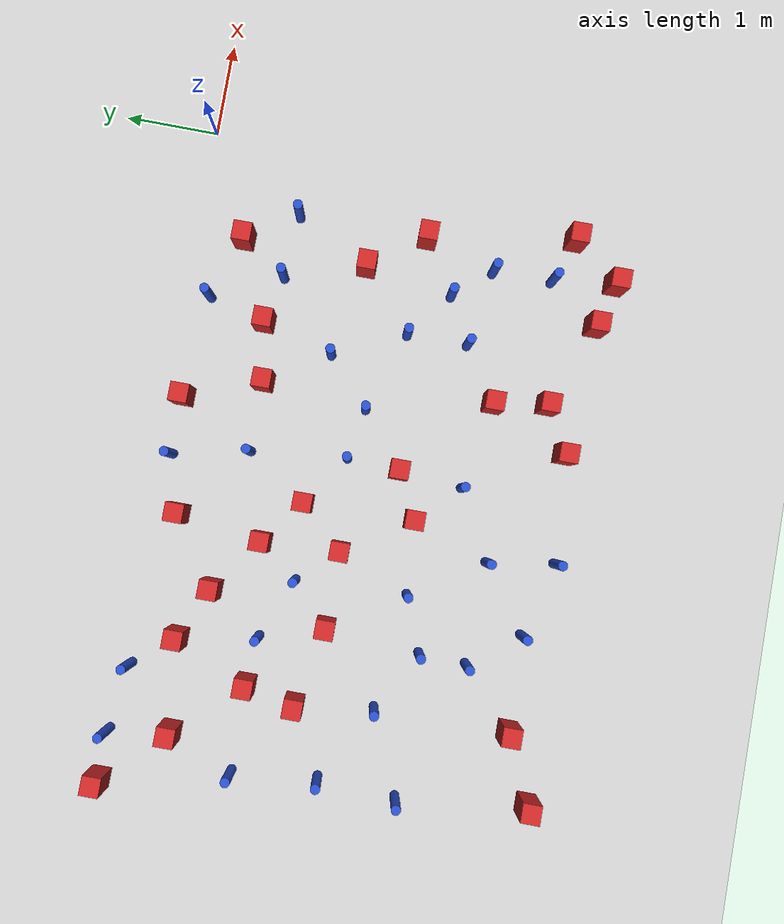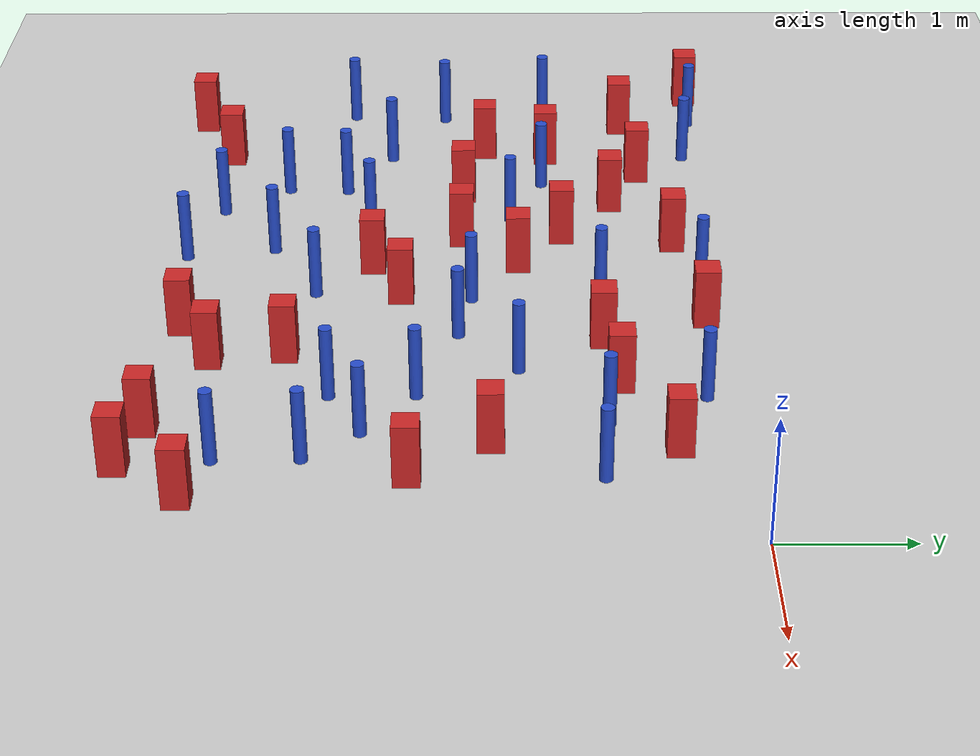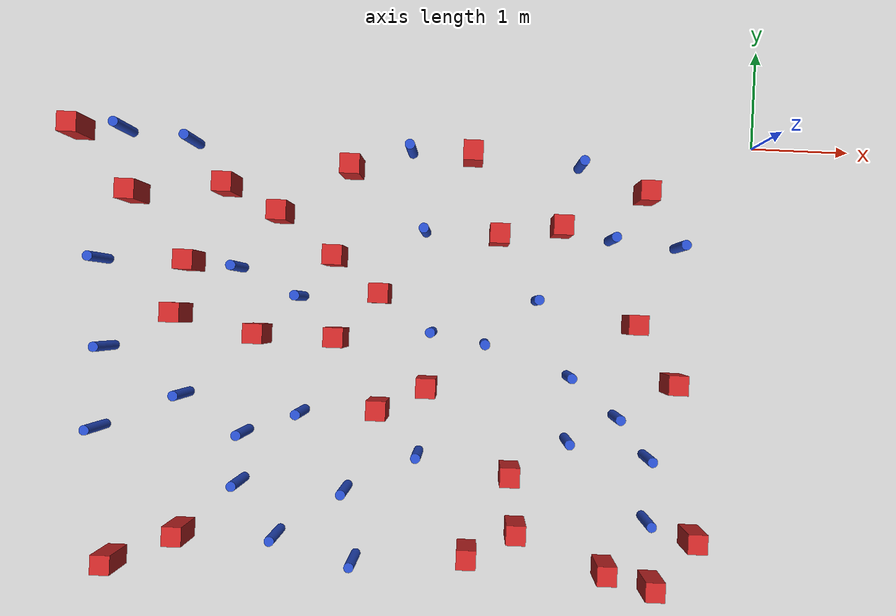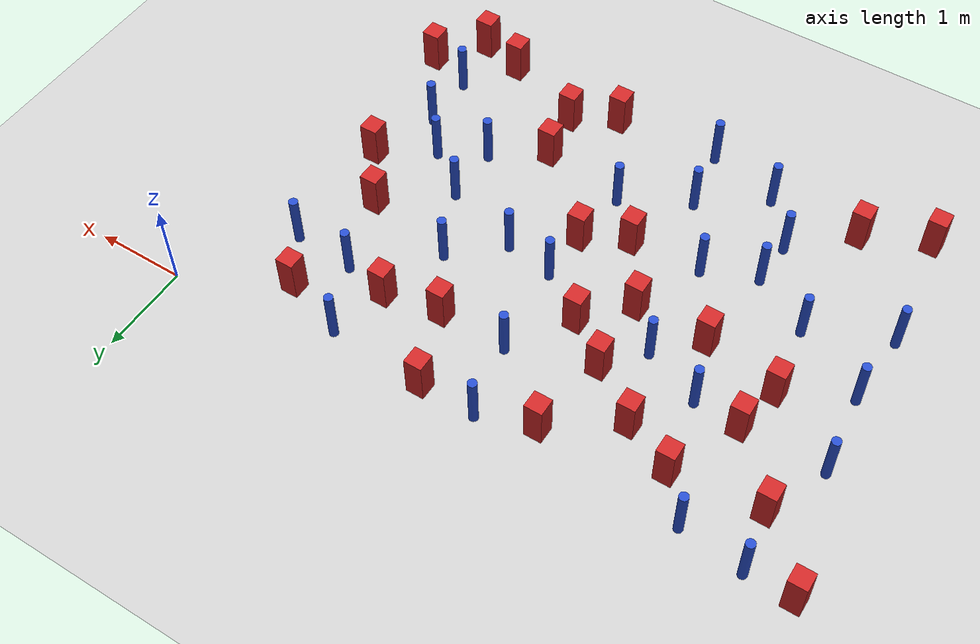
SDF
<sdf version="1.6">
 <world name="default">
  <model name="ground_plane">
   <static>1</static>
   <link name="link">
    <collision name="collision">
     <geometry><plane><normal>0 0 1</normal><size>100 100</size></plane></geometry>
     <surface><friction><ode><mu>100</mu><mu2>50</mu2></ode></friction></surface>
    </collision>
    <visual name="visual">
     <cast_shadows>0</cast_shadows>
     <geometry><plane><normal>0 0 1</normal><size>100 100</size></plane></geometry>
     <material>
      <ambient>1.0 1.0 1.0 1.0</ambient>
      <diffuse>0.8 0.8 0.8 1.0</diffuse>
      <specular>0.01 0.01 0.01 1.000000</specular>
     </material>
    </visual>
   </link>
  </model>
  <model name="pole_obstacle8">
   <static>true</static>
   <pose>-1.8065690611 -0.287226070218 7.38925637345e-09 -8.47170692798e-08 1.24976764989e-08 -1.74513093022e-07</pose>
   <link name="link">
    <pose>0 0 0.3 0 -0 0</pose>
    <inertial>
     <mass>1</mass>
     <inertia><ixx>0.145833</ixx><ixy>0</ixy><ixz>0</ixz><iyy>0.145833</iyy><iyz>0</iyz><izz>0.125</izz></inertia>
    </inertial>
    <collision name="collision">
     <geometry><cylinder><radius>0.05</radius><length>.6</length></cylinder></geometry>
    </collision>
    <visual name="visual">
     <geometry><cylinder><radius>0.05</radius><length>.6</length></cylinder></geometry>
     <material>
      <script><name>Gazebo/Blue</name><uri>file://media/materials/scripts/gazebo.material</uri></script>
     </material>
    </visual>
   </link>
  </model>
  <model name="square_post_obstacle5">
   <static>true</static>
   <pose>-5.03799725201 -2.14161699042 1.91545236811e-07 -7.35059704564e-06 1.12565212e-07 2.39332434364e-05</pose>
   <link name="link">
    <pose>0 0 0.25 0 -0 0</pose>
    <inertial>
     <mass>100</mass>
     <inertia>
      <ixx>0.166667</ixx>
      <ixy>0</ixy>
      <ixz>0</ixz>
      <iyy>0.166667</iyy>
      <iyz>0</iyz>
      <izz>0.166667</izz>
     </inertia>
    </inertial>
    <collision name="collision"><geometry><box><size>.2 .2 .5</size></box></geometry></collision>
    <visual name="visual">
     <geometry><box><size>.2 .2 .5</size></box></geometry>
     <material>
      <script><name>Gazebo/Red</name><uri>file://media/materials/scripts/gazebo.material</uri></script>
     </material>
    </visual>
   </link>
  </model>
  <model name="pole_obstacle10">
   <static>true</static>
   <pose>-5.77082774487 -2.78743568391 7.38925637345e-09 -8.47170692798e-08 1.24976764937e-08 -1.74513093023e-07</pose>
   <link name="link">
    <pose>0 0 0.3 0 -0 0</pose>
    <inertial>
     <mass>1</mass>
     <inertia><ixx>0.145833</ixx><ixy>0</ixy><ixz>0</ixz><iyy>0.145833</iyy><iyz>0</iyz><izz>0.125</izz></inertia>
    </inertial>
    <collision name="collision">
     <geometry><cylinder><radius>0.05</radius><length>.6</length></cylinder></geometry>
    </collision>
    <visual name="visual">
     <geometry><cylinder><radius>0.05</radius><length>.6</length></cylinder></geometry>
     <material>
      <script><name>Gazebo/Blue</name><uri>file://media/materials/scripts/gazebo.material</uri></script>
     </material>
    </visual>
   </link>
  </model>
  <model name="square_post_obstacle9">
   <static>true</static>
   <pose>-4.14083173612 -0.40034103166 1.91545236811e-07 -7.35059704564e-06 1.12565212e-07 2.39332434364e-05</pose>
   <link name="link">
    <pose>0 0 0.25 0 -0 0</pose>
    <inertial>
     <mass>100</mass>
     <inertia>
      <ixx>0.166667</ixx>
      <ixy>0</ixy>
      <ixz>0</ixz>
      <iyy>0.166667</iyy>
      <iyz>0</iyz>
      <izz>0.166667</izz>
     </inertia>
    </inertial>
    <collision name="collision"><geometry><box><size>.2 .2 .5</size></box></geometry></collision>
    <visual name="visual">
     <geometry><box><size>.2 .2 .5</size></box></geometry>
     <material>
      <script><name>Gazebo/Red</name><uri>file://media/materials/scripts/gazebo.material</uri></script>
     </material>
    </visual>
   </link>
  </model>
  <model name="pole_obstacle24">
   <static>true</static>
   <pose>-1.83386318585 -3.10008646162 7.38925637345e-09 -8.47170692799e-08 1.24976765053e-08 -1.74513093017e-07</pose>
   <link name="link">
    <pose>0 0 0.3 0 -0 0</pose>
    <inertial>
     <mass>1</mass>
     <inertia><ixx>0.145833</ixx><ixy>0</ixy><ixz>0</ixz><iyy>0.145833</iyy><iyz>0</iyz><izz>0.125</izz></inertia>
    </inertial>
    <collision name="collision">
     <geometry><cylinder><radius>0.05</radius><length>.6</length></cylinder></geometry>
    </collision>
    <visual name="visual">
     <geometry><cylinder><radius>0.05</radius><length>.6</length></cylinder></geometry>
     <material>
      <script><name>Gazebo/Blue</name><uri>file://media/materials/scripts/gazebo.material</uri></script>
     </material>
    </visual>
   </link>
  </model>
  <model name="square_post_obstacle28">
   <static>true</static>
   <pose>-1.18521659363 -1.88922483155 1.91545236811e-07 -7.35059704564e-06 1.12565212e-07 2.39332434364e-05</pose>
   <link name="link">
    <pose>0 0 0.25 0 -0 0</pose>
    <inertial>
     <mass>100</mass>
     <inertia>
      <ixx>0.166667</ixx>
      <ixy>0</ixy>
      <ixz>0</ixz>
      <iyy>0.166667</iyy>
      <iyz>0</iyz>
      <izz>0.166667</izz>
     </inertia>
    </inertial>
    <collision name="collision"><geometry><box><size>.2 .2 .5</size></box></geometry></collision>
    <visual name="visual">
     <geometry><box><size>.2 .2 .5</size></box></geometry>
     <material>
      <script><name>Gazebo/Red</name><uri>file://media/materials/scripts/gazebo.material</uri></script>
     </material>
    </visual>
   </link>
  </model>
  <model name="square_post_obstacle29">
   <static>true</static>
   <pose>-3.28707836626 -2.61381528833 1.91545236811e-07 -7.35059704564e-06 1.12565212e-07 2.39332434364e-05</pose>
   <link name="link">
    <pose>0 0 0.25 0 -0 0</pose>
    <inertial>
     <mass>100</mass>
     <inertia>
      <ixx>0.166667</ixx>
      <ixy>0</ixy>
      <ixz>0</ixz>
      <iyy>0.166667</iyy>
      <iyz>0</iyz>
      <izz>0.166667</izz>
     </inertia>
    </inertial>
    <collision name="collision"><geometry><box><size>.2 .2 .5</size></box></geometry></collision>
    <visual name="visual">
     <geometry><box><size>.2 .2 .5</size></box></geometry>
     <material>
      <script><name>Gazebo/Red</name><uri>file://media/materials/scripts/gazebo.material</uri></script>
     </material>
    </visual>
   </link>
  </model>
  <model name="pole_obstacle35">
   <static>true</static>
   <pose>-6.67413662354 -1.43992728645 7.38925637345e-09 -8.471706928e-08 1.24976765134e-08 -1.74513093015e-07</pose>
   <link name="link">
    <pose>0 0 0.3 0 -0 0</pose>
    <inertial>
     <mass>1</mass>
     <inertia><ixx>0.145833</ixx><ixy>0</ixy><ixz>0</ixz><iyy>0.145833</iyy><iyz>0</iyz><izz>0.125</izz></inertia>
    </inertial>
    <collision name="collision">
     <geometry><cylinder><radius>0.05</radius><length>.6</length></cylinder></geometry>
    </collision>
    <visual name="visual">
     <geometry><cylinder><radius>0.05</radius><length>.6</length></cylinder></geometry>
     <material>
      <script><name>Gazebo/Blue</name><uri>file://media/materials/scripts/gazebo.material</uri></script>
     </material>
    </visual>
   </link>
  </model>
  <model name="pole_obstacle38">
   <static>true</static>
   <pose>-0.99141755636 -3.87739033498 7.38925637345e-09 -8.47170692799e-08 1.24976765063e-08 -1.74513093018e-07</pose>
   <link name="link">
    <pose>0 0 0.3 0 -0 0</pose>
    <inertial>
     <mass>1</mass>
     <inertia><ixx>0.145833</ixx><ixy>0</ixy><ixz>0</ixz><iyy>0.145833</iyy><iyz>0</iyz><izz>0.125</izz></inertia>
    </inertial>
    <collision name="collision">
     <geometry><cylinder><radius>0.05</radius><length>.6</length></cylinder></geometry>
    </collision>
    <visual name="visual">
     <geometry><cylinder><radius>0.05</radius><length>.6</length></cylinder></geometry>
     <material>
      <script><name>Gazebo/Blue</name><uri>file://media/materials/scripts/gazebo.material</uri></script>
     </material>
    </visual>
   </link>
  </model>
  <model name="pole_obstacle43">
   <static>true</static>
   <pose>-3.25931645318 -2.05246729842 7.38925637345e-09 -8.47170692798e-08 1.24976764939e-08 -1.74513093025e-07</pose>
   <link name="link">
    <pose>0 0 0.3 0 -0 0</pose>
    <inertial>
     <mass>1</mass>
     <inertia><ixx>0.145833</ixx><ixy>0</ixy><ixz>0</ixz><iyy>0.145833</iyy><iyz>0</iyz><izz>0.125</izz></inertia>
    </inertial>
    <collision name="collision">
     <geometry><cylinder><radius>0.05</radius><length>.6</length></cylinder></geometry>
    </collision>
    <visual name="visual">
     <geometry><cylinder><radius>0.05</radius><length>.6</length></cylinder></geometry>
     <material>
      <script><name>Gazebo/Blue</name><uri>file://media/materials/scripts/gazebo.material</uri></script>
     </material>
    </visual>
   </link>
  </model>
  <model name="square_post_obstacle37">
   <static>true</static>
   <pose>-2.60812226487 -1.03034826785 1.91545236811e-07 -7.35059704564e-06 1.12565212e-07 2.39332434364e-05</pose>
   <link name="link">
    <pose>0 0 0.25 0 -0 0</pose>
    <inertial>
     <mass>100</mass>
     <inertia>
      <ixx>0.166667</ixx>
      <ixy>0</ixy>
      <ixz>0</ixz>
      <iyy>0.166667</iyy>
      <iyz>0</iyz>
      <izz>0.166667</izz>
     </inertia>
    </inertial>
    <collision name="collision"><geometry><box><size>.2 .2 .5</size></box></geometry></collision>
    <visual name="visual">
     <geometry><box><size>.2 .2 .5</size></box></geometry>
     <material>
      <script><name>Gazebo/Red</name><uri>file://media/materials/scripts/gazebo.material</uri></script>
     </material>
    </visual>
   </link>
  </model>
  <model name="square_post_obstacle41">
   <static>true</static>
   <pose>-1.97449627131 -0.919613141514 1.91545236811e-07 -7.35059704564e-06 1.12565212e-07 2.39332434364e-05</pose>
   <link name="link">
    <pose>0 0 0.25 0 -0 0</pose>
    <inertial>
     <mass>100</mass>
     <inertia>
      <ixx>0.166667</ixx>
      <ixy>0</ixy>
      <ixz>0</ixz>
      <iyy>0.166667</iyy>
      <iyz>0</iyz>
      <izz>0.166667</izz>
     </inertia>
    </inertial>
    <collision name="collision"><geometry><box><size>.2 .2 .5</size></box></geometry></collision>
    <visual name="visual">
     <geometry><box><size>.2 .2 .5</size></box></geometry>
     <material>
      <script><name>Gazebo/Red</name><uri>file://media/materials/scripts/gazebo.material</uri></script>
     </material>
    </visual>
   </link>
  </model>
  <model name="pole_obstacle56">
   <static>true</static>
   <pose>-5.13363076707 -3.15208082832 7.38925637345e-09 -8.47170692798e-08 1.24976764937e-08 -1.74513093023e-07</pose>
   <link name="link">
    <pose>0 0 0.3 0 -0 0</pose>
    <inertial>
     <mass>1</mass>
     <inertia><ixx>0.145833</ixx><ixy>0</ixy><ixz>0</ixz><iyy>0.145833</iyy><iyz>0</iyz><izz>0.125</izz></inertia>
    </inertial>
    <collision name="collision">
     <geometry><cylinder><radius>0.05</radius><length>.6</length></cylinder></geometry>
    </collision>
    <visual name="visual">
     <geometry><cylinder><radius>0.05</radius><length>.6</length></cylinder></geometry>
     <material>
      <script><name>Gazebo/Blue</name><uri>file://media/materials/scripts/gazebo.material</uri></script>
     </material>
    </visual>
   </link>
  </model>
  <model name="square_post_obstacle50">
   <static>true</static>
   <pose>-4.85392737041 -0.892788304461 1.91545236811e-07 -7.35059704564e-06 1.12565212e-07 2.39332434364e-05</pose>
   <link name="link">
    <pose>0 0 0.25 0 -0 0</pose>
    <inertial>
     <mass>100</mass>
     <inertia>
      <ixx>0.166667</ixx>
      <ixy>0</ixy>
      <ixz>0</ixz>
      <iyy>0.166667</iyy>
      <iyz>0</iyz>
      <izz>0.166667</izz>
     </inertia>
    </inertial>
    <collision name="collision"><geometry><box><size>.2 .2 .5</size></box></geometry></collision>
    <visual name="visual">
     <geometry><box><size>.2 .2 .5</size></box></geometry>
     <material>
      <script><name>Gazebo/Red</name><uri>file://media/materials/scripts/gazebo.material</uri></script>
     </material>
    </visual>
   </link>
  </model>
  <model name="pole_obstacle74">
   <static>true</static>
   <pose>-1.00678500519 -3.23723825303 7.38925637345e-09 -8.47170692799e-08 1.24976765076e-08 -1.74513093016e-07</pose>
   <link name="link">
    <pose>0 0 0.3 0 -0 0</pose>
    <inertial>
     <mass>1</mass>
     <inertia><ixx>0.145833</ixx><ixy>0</ixy><ixz>0</ixz><iyy>0.145833</iyy><iyz>0</iyz><izz>0.125</izz></inertia>
    </inertial>
    <collision name="collision">
     <geometry><cylinder><radius>0.05</radius><length>.6</length></cylinder></geometry>
    </collision>
    <visual name="visual">
     <geometry><cylinder><radius>0.05</radius><length>.6</length></cylinder></geometry>
     <material>
      <script><name>Gazebo/Blue</name><uri>file://media/materials/scripts/gazebo.material</uri></script>
     </material>
    </visual>
   </link>
  </model>
  <model name="square_post_obstacle64">
   <static>true</static>
   <pose>-2.4064492656 -3.46624034341 1.91545236811e-07 -7.35059704564e-06 1.12565212e-07 2.39332434364e-05</pose>
   <link name="link">
    <pose>0 0 0.25 0 -0 0</pose>
    <inertial>
     <mass>100</mass>
     <inertia>
      <ixx>0.166667</ixx>
      <ixy>0</ixy>
      <ixz>0</ixz>
      <iyy>0.166667</iyy>
      <iyz>0</iyz>
      <izz>0.166667</izz>
     </inertia>
    </inertial>
    <collision name="collision"><geometry><box><size>.2 .2 .5</size></box></geometry></collision>
    <visual name="visual">
     <geometry><box><size>.2 .2 .5</size></box></geometry>
     <material>
      <script><name>Gazebo/Red</name><uri>file://media/materials/scripts/gazebo.material</uri></script>
     </material>
    </visual>
   </link>
  </model>
  <model name="square_post_obstacle69">
   <static>true</static>
   <pose>-0.762250352055 -2.47635297729 1.91545236811e-07 -7.35059704564e-06 1.12565212e-07 2.39332434364e-05</pose>
   <link name="link">
    <pose>0 0 0.25 0 -0 0</pose>
    <inertial>
     <mass>100</mass>
     <inertia>
      <ixx>0.166667</ixx>
      <ixy>0</ixy>
      <ixz>0</ixz>
      <iyy>0.166667</iyy>
      <iyz>0</iyz>
      <izz>0.166667</izz>
     </inertia>
    </inertial>
    <collision name="collision"><geometry><box><size>.2 .2 .5</size></box></geometry></collision>
    <visual name="visual">
     <geometry><box><size>.2 .2 .5</size></box></geometry>
     <material>
      <script><name>Gazebo/Red</name><uri>file://media/materials/scripts/gazebo.material</uri></script>
     </material>
    </visual>
   </link>
  </model>
  <model name="pole_obstacle82">
   <static>true</static>
   <pose>-4.61562647308 -1.74129449645 7.38925637345e-09 -8.471706928e-08 1.24976765134e-08 -1.74513093015e-07</pose>
   <link name="link">
    <pose>0 0 0.3 0 -0 0</pose>
    <inertial>
     <mass>1</mass>
     <inertia><ixx>0.145833</ixx><ixy>0</ixy><ixz>0</ixz><iyy>0.145833</iyy><iyz>0</iyz><izz>0.125</izz></inertia>
    </inertial>
    <collision name="collision">
     <geometry><cylinder><radius>0.05</radius><length>.6</length></cylinder></geometry>
    </collision>
    <visual name="visual">
     <geometry><cylinder><radius>0.05</radius><length>.6</length></cylinder></geometry>
     <material>
      <script><name>Gazebo/Blue</name><uri>file://media/materials/scripts/gazebo.material</uri></script>
     </material>
    </visual>
   </link>
  </model>
  <model name="pole_obstacle84">
   <static>true</static>
   <pose>-3.962976458 -4.40478168327 7.38925637345e-09 -8.471706928e-08 1.24976765147e-08 -1.74513093014e-07</pose>
   <link name="link">
    <pose>0 0 0.3 0 -0 0</pose>
    <inertial>
     <mass>1</mass>
     <inertia><ixx>0.145833</ixx><ixy>0</ixy><ixz>0</ixz><iyy>0.145833</iyy><iyz>0</iyz><izz>0.125</izz></inertia>
    </inertial>
    <collision name="collision">
     <geometry><cylinder><radius>0.05</radius><length>.6</length></cylinder></geometry>
    </collision>
    <visual name="visual">
     <geometry><cylinder><radius>0.05</radius><length>.6</length></cylinder></geometry>
     <material>
      <script><name>Gazebo/Blue</name><uri>file://media/materials/scripts/gazebo.material</uri></script>
     </material>
    </visual>
   </link>
  </model>
  <model name="square_post_obstacle74">
   <static>true</static>
   <pose>-6.45733960068 -4.51499570986 1.91545236811e-07 -7.35059704564e-06 1.12565212e-07 2.39332434364e-05</pose>
   <link name="link">
    <pose>0 0 0.25 0 -0 0</pose>
    <inertial>
     <mass>100</mass>
     <inertia>
      <ixx>0.166667</ixx>
      <ixy>0</ixy>
      <ixz>0</ixz>
      <iyy>0.166667</iyy>
      <iyz>0</iyz>
      <izz>0.166667</izz>
     </inertia>
    </inertial>
    <collision name="collision"><geometry><box><size>.2 .2 .5</size></box></geometry></collision>
    <visual name="visual">
     <geometry><box><size>.2 .2 .5</size></box></geometry>
     <material>
      <script><name>Gazebo/Red</name><uri>file://media/materials/scripts/gazebo.material</uri></script>
     </material>
    </visual>
   </link>
  </model>
  <model name="square_post_obstacle78">
   <static>true</static>
   <pose>-1.12118746112 -0.53835635817 1.91545236811e-07 -7.35059704564e-06 1.12565212e-07 2.39332434364e-05</pose>
   <link name="link">
    <pose>0 0 0.25 0 -0 0</pose>
    <inertial>
     <mass>100</mass>
     <inertia>
      <ixx>0.166667</ixx>
      <ixy>0</ixy>
      <ixz>0</ixz>
      <iyy>0.166667</iyy>
      <iyz>0</iyz>
      <izz>0.166667</izz>
     </inertia>
    </inertial>
    <collision name="collision"><geometry><box><size>.2 .2 .5</size></box></geometry></collision>
    <visual name="visual">
     <geometry><box><size>.2 .2 .5</size></box></geometry>
     <material>
      <script><name>Gazebo/Red</name><uri>file://media/materials/scripts/gazebo.material</uri></script>
     </material>
    </visual>
   </link>
  </model>
  <model name="square_post_obstacle81">
   <static>true</static>
   <pose>-1.39502527432 -4.40852561555 1.91545236811e-07 -7.35059704564e-06 1.12565212e-07 2.39332434364e-05</pose>
   <link name="link">
    <pose>0 0 0.25 0 -0 0</pose>
    <inertial>
     <mass>100</mass>
     <inertia>
      <ixx>0.166667</ixx>
      <ixy>0</ixy>
      <ixz>0</ixz>
      <iyy>0.166667</iyy>
      <iyz>0</iyz>
      <izz>0.166667</izz>
     </inertia>
    </inertial>
    <collision name="collision"><geometry><box><size>.2 .2 .5</size></box></geometry></collision>
    <visual name="visual">
     <geometry><box><size>.2 .2 .5</size></box></geometry>
     <material>
      <script><name>Gazebo/Red</name><uri>file://media/materials/scripts/gazebo.material</uri></script>
     </material>
    </visual>
   </link>
  </model>
  <model name="pole_obstacle92">
   <static>true</static>
   <pose>-6.47702842089 -0.10415934289 7.38925637345e-09 -8.47170692799e-08 1.24976765039e-08 -1.74513093019e-07</pose>
   <link name="link">
    <pose>0 0 0.3 0 -0 0</pose>
    <inertial>
     <mass>1</mass>
     <inertia><ixx>0.145833</ixx><ixy>0</ixy><ixz>0</ixz><iyy>0.145833</iyy><iyz>0</iyz><izz>0.125</izz></inertia>
    </inertial>
    <collision name="collision">
     <geometry><cylinder><radius>0.05</radius><length>.6</length></cylinder></geometry>
    </collision>
    <visual name="visual">
     <geometry><cylinder><radius>0.05</radius><length>.6</length></cylinder></geometry>
     <material>
      <script><name>Gazebo/Blue</name><uri>file://media/materials/scripts/gazebo.material</uri></script>
     </material>
    </visual>
   </link>
  </model>
  <model name="pole_obstacle95">
   <static>true</static>
   <pose>-1.83907558656 -2.44635905735 7.38925637345e-09 -8.47170692799e-08 1.24976765053e-08 -1.74513093017e-07</pose>
   <link name="link">
    <pose>0 0 0.3 0 -0 0</pose>
    <inertial>
     <mass>1</mass>
     <inertia><ixx>0.145833</ixx><ixy>0</ixy><ixz>0</ixz><iyy>0.145833</iyy><iyz>0</iyz><izz>0.125</izz></inertia>
    </inertial>
    <collision name="collision">
     <geometry><cylinder><radius>0.05</radius><length>.6</length></cylinder></geometry>
    </collision>
    <visual name="visual">
     <geometry><cylinder><radius>0.05</radius><length>.6</length></cylinder></geometry>
     <material>
      <script><name>Gazebo/Blue</name><uri>file://media/materials/scripts/gazebo.material</uri></script>
     </material>
    </visual>
   </link>
  </model>
  <model name="pole_obstacle96">
   <static>true</static>
   <pose>-6.63237047079 -3.16357143787 7.38925637345e-09 -8.47170692798e-08 1.24976764937e-08 -1.74513093023e-07</pose>
   <link name="link">
    <pose>0 0 0.3 0 -0 0</pose>
    <inertial>
     <mass>1</mass>
     <inertia><ixx>0.145833</ixx><ixy>0</ixy><ixz>0</ixz><iyy>0.145833</iyy><iyz>0</iyz><izz>0.125</izz></inertia>
    </inertial>
    <collision name="collision">
     <geometry><cylinder><radius>0.05</radius><length>.6</length></cylinder></geometry>
    </collision>
    <visual name="visual">
     <geometry><cylinder><radius>0.05</radius><length>.6</length></cylinder></geometry>
     <material>
      <script><name>Gazebo/Blue</name><uri>file://media/materials/scripts/gazebo.material</uri></script>
     </material>
    </visual>
   </link>
  </model>
  <model name="square_post_obstacle90">
   <static>true</static>
   <pose>-4.27782032081 -1.31708150873 1.91545236811e-07 -7.35059704564e-06 1.12565212e-07 2.39332434364e-05</pose>
   <link name="link">
    <pose>0 0 0.25 0 -0 0</pose>
    <inertial>
     <mass>100</mass>
     <inertia>
      <ixx>0.166667</ixx>
      <ixy>0</ixy>
      <ixz>0</ixz>
      <iyy>0.166667</iyy>
      <iyz>0</iyz>
      <izz>0.166667</izz>
     </inertia>
    </inertial>
    <collision name="collision"><geometry><box><size>.2 .2 .5</size></box></geometry></collision>
    <visual name="visual">
     <geometry><box><size>.2 .2 .5</size></box></geometry>
     <material>
      <script><name>Gazebo/Red</name><uri>file://media/materials/scripts/gazebo.material</uri></script>
     </material>
    </visual>
   </link>
  </model>
  <model name="square_post_obstacle92">
   <static>true</static>
   <pose>-5.41153924925 -0.634707509888 1.91545236811e-07 -7.35059704564e-06 1.12565212e-07 2.39332434364e-05</pose>
   <link name="link">
    <pose>0 0 0.25 0 -0 0</pose>
    <inertial>
     <mass>100</mass>
     <inertia>
      <ixx>0.166667</ixx>
      <ixy>0</ixy>
      <ixz>0</ixz>
      <iyy>0.166667</iyy>
      <iyz>0</iyz>
      <izz>0.166667</izz>
     </inertia>
    </inertial>
    <collision name="collision"><geometry><box><size>.2 .2 .5</size></box></geometry></collision>
    <visual name="visual">
     <geometry><box><size>.2 .2 .5</size></box></geometry>
     <material>
      <script><name>Gazebo/Red</name><uri>file://media/materials/scripts/gazebo.material</uri></script>
     </material>
    </visual>
   </link>
  </model>
  <model name="pole_obstacle104">
   <static>true</static>
   <pose>-1.45852328149 -1.02864376425 7.38925637345e-09 -8.47170692799e-08 1.24976765073e-08 -1.74513093016e-07</pose>
   <link name="link">
    <pose>0 0 0.3 0 -0 0</pose>
    <inertial>
     <mass>1</mass>
     <inertia><ixx>0.145833</ixx><ixy>0</ixy><ixz>0</ixz><iyy>0.145833</iyy><iyz>0</iyz><izz>0.125</izz></inertia>
    </inertial>
    <collision name="collision">
     <geometry><cylinder><radius>0.05</radius><length>.6</length></cylinder></geometry>
    </collision>
    <visual name="visual">
     <geometry><cylinder><radius>0.05</radius><length>.6</length></cylinder></geometry>
     <material>
      <script><name>Gazebo/Blue</name><uri>file://media/materials/scripts/gazebo.material</uri></script>
     </material>
    </visual>
   </link>
  </model>
  <model name="pole_obstacle105">
   <static>true</static>
   <pose>-4.5561785687 -2.92118423219 7.38925637345e-09 -8.47170692798e-08 1.24976764937e-08 -1.74513093023e-07</pose>
   <link name="link">
    <pose>0 0 0.3 0 -0 0</pose>
    <inertial>
     <mass>1</mass>
     <inertia><ixx>0.145833</ixx><ixy>0</ixy><ixz>0</ixz><iyy>0.145833</iyy><iyz>0</iyz><izz>0.125</izz></inertia>
    </inertial>
    <collision name="collision">
     <geometry><cylinder><radius>0.05</radius><length>.6</length></cylinder></geometry>
    </collision>
    <visual name="visual">
     <geometry><cylinder><radius>0.05</radius><length>.6</length></cylinder></geometry>
     <material>
      <script><name>Gazebo/Blue</name><uri>file://media/materials/scripts/gazebo.material</uri></script>
     </material>
    </visual>
   </link>
  </model>
  <model name="pole_obstacle109">
   <static>true</static>
   <pose>-5.15867994955 -3.65568916474 7.38925637345e-09 -8.47170692798e-08 1.24976764937e-08 -1.74513093023e-07</pose>
   <link name="link">
    <pose>0 0 0.3 0 -0 0</pose>
    <inertial>
     <mass>1</mass>
     <inertia><ixx>0.145833</ixx><ixy>0</ixy><ixz>0</ixz><iyy>0.145833</iyy><iyz>0</iyz><izz>0.125</izz></inertia>
    </inertial>
    <collision name="collision">
     <geometry><cylinder><radius>0.05</radius><length>.6</length></cylinder></geometry>
    </collision>
    <visual name="visual">
     <geometry><cylinder><radius>0.05</radius><length>.6</length></cylinder></geometry>
     <material>
      <script><name>Gazebo/Blue</name><uri>file://media/materials/scripts/gazebo.material</uri></script>
     </material>
    </visual>
   </link>
  </model>
  <model name="square_post_obstacle106">
   <static>true</static>
   <pose>-5.76568444791 -1.42831961041 1.91545236811e-07 -7.35059704564e-06 1.12565212e-07 2.39332434364e-05</pose>
   <link name="link">
    <pose>0 0 0.25 0 -0 0</pose>
    <inertial>
     <mass>100</mass>
     <inertia>
      <ixx>0.166667</ixx>
      <ixy>0</ixy>
      <ixz>0</ixz>
      <iyy>0.166667</iyy>
      <iyz>0</iyz>
      <izz>0.166667</izz>
     </inertia>
    </inertial>
    <collision name="collision"><geometry><box><size>.2 .2 .5</size></box></geometry></collision>
    <visual name="visual">
     <geometry><box><size>.2 .2 .5</size></box></geometry>
     <material>
      <script><name>Gazebo/Red</name><uri>file://media/materials/scripts/gazebo.material</uri></script>
     </material>
    </visual>
   </link>
  </model>
  <model name="square_post_obstacle107">
   <static>true</static>
   <pose>-3.80019118314 -1.68075415388 1.91545236811e-07 -7.35059704564e-06 1.12565212e-07 2.39332434364e-05</pose>
   <link name="link">
    <pose>0 0 0.25 0 -0 0</pose>
    <inertial>
     <mass>100</mass>
     <inertia>
      <ixx>0.166667</ixx>
      <ixy>0</ixy>
      <ixz>0</ixz>
      <iyy>0.166667</iyy>
      <iyz>0</iyz>
      <izz>0.166667</izz>
     </inertia>
    </inertial>
    <collision name="collision"><geometry><box><size>.2 .2 .5</size></box></geometry></collision>
    <visual name="visual">
     <geometry><box><size>.2 .2 .5</size></box></geometry>
     <material>
      <script><name>Gazebo/Red</name><uri>file://media/materials/scripts/gazebo.material</uri></script>
     </material>
    </visual>
   </link>
  </model>
  <model name="pole_obstacle125">
   <static>true</static>
   <pose>-3.35148922392 -3.29945449822 7.38925637345e-09 -8.471706928e-08 1.24976765098e-08 -1.74513093016e-07</pose>
   <link name="link">
    <pose>0 0 0.3 0 -0 0</pose>
    <inertial>
     <mass>1</mass>
     <inertia><ixx>0.145833</ixx><ixy>0</ixy><ixz>0</ixz><iyy>0.145833</iyy><iyz>0</iyz><izz>0.125</izz></inertia>
    </inertial>
    <collision name="collision">
     <geometry><cylinder><radius>0.05</radius><length>.6</length></cylinder></geometry>
    </collision>
    <visual name="visual">
     <geometry><cylinder><radius>0.05</radius><length>.6</length></cylinder></geometry>
     <material>
      <script><name>Gazebo/Blue</name><uri>file://media/materials/scripts/gazebo.material</uri></script>
     </material>
    </visual>
   </link>
  </model>
  <model name="square_post_obstacle138">
   <static>true</static>
   <pose>-6.37833131344 -0.747786851019 1.91545236811e-07 -7.35059704564e-06 1.12565212e-07 2.39332434364e-05</pose>
   <link name="link">
    <pose>0 0 0.25 0 -0 0</pose>
    <inertial>
     <mass>100</mass>
     <inertia>
      <ixx>0.166667</ixx>
      <ixy>0</ixy>
      <ixz>0</ixz>
      <iyy>0.166667</iyy>
      <iyz>0</iyz>
      <izz>0.166667</izz>
     </inertia>
    </inertial>
    <collision name="collision"><geometry><box><size>.2 .2 .5</size></box></geometry></collision>
    <visual name="visual">
     <geometry><box><size>.2 .2 .5</size></box></geometry>
     <material>
      <script><name>Gazebo/Red</name><uri>file://media/materials/scripts/gazebo.material</uri></script>
     </material>
    </visual>
   </link>
  </model>
  <model name="pole_obstacle144">
   <static>true</static>
   <pose>-4.07674775673 -3.69162556367 7.38925637345e-09 -8.47170692798e-08 1.24976764937e-08 -1.74513093023e-07</pose>
   <link name="link">
    <pose>0 0 0.3 0 -0 0</pose>
    <inertial>
     <mass>1</mass>
     <inertia><ixx>0.145833</ixx><ixy>0</ixy><ixz>0</ixz><iyy>0.145833</iyy><iyz>0</iyz><izz>0.125</izz></inertia>
    </inertial>
    <collision name="collision">
     <geometry><cylinder><radius>0.05</radius><length>.6</length></cylinder></geometry>
    </collision>
    <visual name="visual">
     <geometry><cylinder><radius>0.05</radius><length>.6</length></cylinder></geometry>
     <material>
      <script><name>Gazebo/Blue</name><uri>file://media/materials/scripts/gazebo.material</uri></script>
     </material>
    </visual>
   </link>
  </model>
  <model name="pole_obstacle147">
   <static>true</static>
   <pose>-5.77314602357 -0.200855454574 7.38925637345e-09 -8.471706928e-08 1.24976765089e-08 -1.74513093017e-07</pose>
   <link name="link">
    <pose>0 0 0.3 0 -0 0</pose>
    <inertial>
     <mass>1</mass>
     <inertia><ixx>0.145833</ixx><ixy>0</ixy><ixz>0</ixz><iyy>0.145833</iyy><iyz>0</iyz><izz>0.125</izz></inertia>
    </inertial>
    <collision name="collision">
     <geometry><cylinder><radius>0.05</radius><length>.6</length></cylinder></geometry>
    </collision>
    <visual name="visual">
     <geometry><cylinder><radius>0.05</radius><length>.6</length></cylinder></geometry>
     <material>
      <script><name>Gazebo/Blue</name><uri>file://media/materials/scripts/gazebo.material</uri></script>
     </material>
    </visual>
   </link>
  </model>
  <model name="pole_obstacle165">
   <static>true</static>
   <pose>-2.19627147152 -1.68369793422 7.38925637345e-09 -8.471706928e-08 1.24976765152e-08 -1.74513093012e-07</pose>
   <link name="link">
    <pose>0 0 0.3 0 -0 0</pose>
    <inertial>
     <mass>1</mass>
     <inertia><ixx>0.145833</ixx><ixy>0</ixy><ixz>0</ixz><iyy>0.145833</iyy><iyz>0</iyz><izz>0.125</izz></inertia>
    </inertial>
    <collision name="collision">
     <geometry><cylinder><radius>0.05</radius><length>.6</length></cylinder></geometry>
    </collision>
    <visual name="visual">
     <geometry><cylinder><radius>0.05</radius><length>.6</length></cylinder></geometry>
     <material>
      <script><name>Gazebo/Blue</name><uri>file://media/materials/scripts/gazebo.material</uri></script>
     </material>
    </visual>
   </link>
  </model>
  <model name="square_post_obstacle159">
   <static>true</static>
   <pose>-3.77560281054 -2.8590791466 1.91545236811e-07 -7.35059704564e-06 1.12565212e-07 2.39332434364e-05</pose>
   <link name="link">
    <pose>0 0 0.25 0 -0 0</pose>
    <inertial>
     <mass>100</mass>
     <inertia>
      <ixx>0.166667</ixx>
      <ixy>0</ixy>
      <ixz>0</ixz>
      <iyy>0.166667</iyy>
      <iyz>0</iyz>
      <izz>0.166667</izz>
     </inertia>
    </inertial>
    <collision name="collision"><geometry><box><size>.2 .2 .5</size></box></geometry></collision>
    <visual name="visual">
     <geometry><box><size>.2 .2 .5</size></box></geometry>
     <material>
      <script><name>Gazebo/Red</name><uri>file://media/materials/scripts/gazebo.material</uri></script>
     </material>
    </visual>
   </link>
  </model>
  <model name="square_post_obstacle160">
   <static>true</static>
   <pose>-2.32127567819 -4.04070667502 1.91545236811e-07 -7.35059704564e-06 1.12565212e-07 2.39332434364e-05</pose>
   <link name="link">
    <pose>0 0 0.25 0 -0 0</pose>
    <inertial>
     <mass>100</mass>
     <inertia>
      <ixx>0.166667</ixx>
      <ixy>0</ixy>
      <ixz>0</ixz>
      <iyy>0.166667</iyy>
      <iyz>0</iyz>
      <izz>0.166667</izz>
     </inertia>
    </inertial>
    <collision name="collision"><geometry><box><size>.2 .2 .5</size></box></geometry></collision>
    <visual name="visual">
     <geometry><box><size>.2 .2 .5</size></box></geometry>
     <material>
      <script><name>Gazebo/Red</name><uri>file://media/materials/scripts/gazebo.material</uri></script>
     </material>
    </visual>
   </link>
  </model>
  <model name="square_post_obstacle162">
   <static>true</static>
   <pose>-6.98233144137 -0.10551960714 1.91545236811e-07 -7.35059704564e-06 1.12565212e-07 2.39332434364e-05</pose>
   <link name="link">
    <pose>0 0 0.25 0 -0 0</pose>
    <inertial>
     <mass>100</mass>
     <inertia>
      <ixx>0.166667</ixx>
      <ixy>0</ixy>
      <ixz>0</ixz>
      <iyy>0.166667</iyy>
      <iyz>0</iyz>
      <izz>0.166667</izz>
     </inertia>
    </inertial>
    <collision name="collision"><geometry><box><size>.2 .2 .5</size></box></geometry></collision>
    <visual name="visual">
     <geometry><box><size>.2 .2 .5</size></box></geometry>
     <material>
      <script><name>Gazebo/Red</name><uri>file://media/materials/scripts/gazebo.material</uri></script>
     </material>
    </visual>
   </link>
  </model>
  <model name="pole_obstacle166">
   <static>true</static>
   <pose>-5.25820514681 -1.47108397383 7.38925637345e-09 -8.471706928e-08 1.24976765134e-08 -1.74513093015e-07</pose>
   <link name="link">
    <pose>0 0 0.3 0 -0 0</pose>
    <inertial>
     <mass>1</mass>
     <inertia><ixx>0.145833</ixx><ixy>0</ixy><ixz>0</ixz><iyy>0.145833</iyy><iyz>0</iyz><izz>0.125</izz></inertia>
    </inertial>
    <collision name="collision">
     <geometry><cylinder><radius>0.05</radius><length>.6</length></cylinder></geometry>
    </collision>
    <visual name="visual">
     <geometry><cylinder><radius>0.05</radius><length>.6</length></cylinder></geometry>
     <material>
      <script><name>Gazebo/Blue</name><uri>file://media/materials/scripts/gazebo.material</uri></script>
     </material>
    </visual>
   </link>
  </model>
  <model name="pole_obstacle167">
   <static>true</static>
   <pose>-6.5767780418 -2.33626163094 7.38925637345e-09 -8.47170692798e-08 1.24976764937e-08 -1.74513093023e-07</pose>
   <link name="link">
    <pose>0 0 0.3 0 -0 0</pose>
    <inertial>
     <mass>1</mass>
     <inertia><ixx>0.145833</ixx><ixy>0</ixy><ixz>0</ixz><iyy>0.145833</iyy><iyz>0</iyz><izz>0.125</izz></inertia>
    </inertial>
    <collision name="collision">
     <geometry><cylinder><radius>0.05</radius><length>.6</length></cylinder></geometry>
    </collision>
    <visual name="visual">
     <geometry><cylinder><radius>0.05</radius><length>.6</length></cylinder></geometry>
     <material>
      <script><name>Gazebo/Blue</name><uri>file://media/materials/scripts/gazebo.material</uri></script>
     </material>
    </visual>
   </link>
  </model>
  <model name="pole_obstacle171">
   <static>true</static>
   <pose>-4.75935039743 -4.17893095997 7.38925637345e-09 -8.47170692796e-08 1.24976764786e-08 -1.74513093032e-07</pose>
   <link name="link">
    <pose>0 0 0.3 0 -0 0</pose>
    <inertial>
     <mass>1</mass>
     <inertia><ixx>0.145833</ixx><ixy>0</ixy><ixz>0</ixz><iyy>0.145833</iyy><iyz>0</iyz><izz>0.125</izz></inertia>
    </inertial>
    <collision name="collision">
     <geometry><cylinder><radius>0.05</radius><length>.6</length></cylinder></geometry>
    </collision>
    <visual name="visual">
     <geometry><cylinder><radius>0.05</radius><length>.6</length></cylinder></geometry>
     <material>
      <script><name>Gazebo/Blue</name><uri>file://media/materials/scripts/gazebo.material</uri></script>
     </material>
    </visual>
   </link>
  </model>
  <model name="square_post_obstacle182">
   <static>true</static>
   <pose>-0.905462333646 -4.54730431295 1.91545236811e-07 -7.35059704564e-06 1.12565212e-07 2.39332434364e-05</pose>
   <link name="link">
    <pose>0 0 0.25 0 -0 0</pose>
    <inertial>
     <mass>100</mass>
     <inertia>
      <ixx>0.166667</ixx>
      <ixy>0</ixy>
      <ixz>0</ixz>
      <iyy>0.166667</iyy>
      <iyz>0</iyz>
      <izz>0.166667</izz>
     </inertia>
    </inertial>
    <collision name="collision"><geometry><box><size>.2 .2 .5</size></box></geometry></collision>
    <visual name="visual">
     <geometry><box><size>.2 .2 .5</size></box></geometry>
     <material>
      <script><name>Gazebo/Red</name><uri>file://media/materials/scripts/gazebo.material</uri></script>
     </material>
    </visual>
   </link>
  </model>
  <model name="pole_obstacle183">
   <static>true</static>
   <pose>-3.53962336557 -0.202261035983 7.38925637345e-09 -8.47170692796e-08 1.2497676469e-08 -1.74513093038e-07</pose>
   <link name="link">
    <pose>0 0 0.3 0 -0 0</pose>
    <inertial>
     <mass>1</mass>
     <inertia><ixx>0.145833</ixx><ixy>0</ixy><ixz>0</ixz><iyy>0.145833</iyy><iyz>0</iyz><izz>0.125</izz></inertia>
    </inertial>
    <collision name="collision">
     <geometry><cylinder><radius>0.05</radius><length>.6</length></cylinder></geometry>
    </collision>
    <visual name="visual">
     <geometry><cylinder><radius>0.05</radius><length>.6</length></cylinder></geometry>
     <material>
      <script><name>Gazebo/Blue</name><uri>file://media/materials/scripts/gazebo.material</uri></script>
     </material>
    </visual>
   </link>
  </model>
  <model name="square_post_obstacle186">
   <static>true</static>
   <pose>-5.75614008183 -4.20158508574 1.91545236811e-07 -7.35059704564e-06 1.12565212e-07 2.39332434364e-05</pose>
   <link name="link">
    <pose>0 0 0.25 0 -0 0</pose>
    <inertial>
     <mass>100</mass>
     <inertia>
      <ixx>0.166667</ixx>
      <ixy>0</ixy>
      <ixz>0</ixz>
      <iyy>0.166667</iyy>
      <iyz>0</iyz>
      <izz>0.166667</izz>
     </inertia>
    </inertial>
    <collision name="collision"><geometry><box><size>.2 .2 .5</size></box></geometry></collision>
    <visual name="visual">
     <geometry><box><size>.2 .2 .5</size></box></geometry>
     <material>
      <script><name>Gazebo/Red</name><uri>file://media/materials/scripts/gazebo.material</uri></script>
     </material>
    </visual>
   </link>
  </model>
  <model name="pole_obstacle186">
   <static>true</static>
   <pose>-3.36655121644 -1.02171209784 7.38925637345e-09 -8.47170692796e-08 1.24976764721e-08 -1.74513093038e-07</pose>
   <link name="link">
    <pose>0 0 0.3 0 -0 0</pose>
    <inertial>
     <mass>1</mass>
     <inertia><ixx>0.145833</ixx><ixy>0</ixy><ixz>0</ixz><iyy>0.145833</iyy><iyz>0</iyz><izz>0.125</izz></inertia>
    </inertial>
    <collision name="collision">
     <geometry><cylinder><radius>0.05</radius><length>.6</length></cylinder></geometry>
    </collision>
    <visual name="visual">
     <geometry><cylinder><radius>0.05</radius><length>.6</length></cylinder></geometry>
     <material>
      <script><name>Gazebo/Blue</name><uri>file://media/materials/scripts/gazebo.material</uri></script>
     </material>
    </visual>
   </link>
  </model>
  <model name="square_post_obstacle187">
   <static>true</static>
   <pose>-5.8765440886 -1.96395900823 1.91545236811e-07 -7.35059704564e-06 1.12565212e-07 2.39332434364e-05</pose>
   <link name="link">
    <pose>0 0 0.25 0 -0 0</pose>
    <inertial>
     <mass>100</mass>
     <inertia>
      <ixx>0.166667</ixx>
      <ixy>0</ixy>
      <ixz>0</ixz>
      <iyy>0.166667</iyy>
      <iyz>0</iyz>
      <izz>0.166667</izz>
     </inertia>
    </inertial>
    <collision name="collision"><geometry><box><size>.2 .2 .5</size></box></geometry></collision>
    <visual name="visual">
     <geometry><box><size>.2 .2 .5</size></box></geometry>
     <material>
      <script><name>Gazebo/Red</name><uri>file://media/materials/scripts/gazebo.material</uri></script>
     </material>
    </visual>
   </link>
  </model>
  <model name="square_post_obstacle200">
   <static>true</static>
   <pose>-4.23206877401 -2.14678810335 1.91545236811e-07 -7.35059704564e-06 1.12565212e-07 2.39332434364e-05</pose>
   <link name="link">
    <pose>0 0 0.25 0 -0 0</pose>
    <inertial>
     <mass>100</mass>
     <inertia>
      <ixx>0.166667</ixx>
      <ixy>0</ixy>
      <ixz>0</ixz>
      <iyy>0.166667</iyy>
      <iyz>0</iyz>
      <izz>0.166667</izz>
     </inertia>
    </inertial>
    <collision name="collision"><geometry><box><size>.2 .2 .5</size></box></geometry></collision>
    <visual name="visual">
     <geometry><box><size>.2 .2 .5</size></box></geometry>
     <material>
      <script><name>Gazebo/Red</name><uri>file://media/materials/scripts/gazebo.material</uri></script>
     </material>
    </visual>
   </link>
  </model>
  <model name="pole_obstacle191">
   <static>true</static>
   <pose>-1.34107700572 -2.8370186588 7.38925637345e-09 -8.47170692799e-08 1.24976765053e-08 -1.74513093017e-07</pose>
   <link name="link">
    <pose>0 0 0.3 0 -0 0</pose>
    <inertial>
     <mass>1</mass>
     <inertia><ixx>0.145833</ixx><ixy>0</ixy><ixz>0</ixz><iyy>0.145833</iyy><iyz>0</iyz><izz>0.125</izz></inertia>
    </inertial>
    <collision name="collision">
     <geometry><cylinder><radius>0.05</radius><length>.6</length></cylinder></geometry>
    </collision>
    <visual name="visual">
     <geometry><cylinder><radius>0.05</radius><length>.6</length></cylinder></geometry>
     <material>
      <script><name>Gazebo/Blue</name><uri>file://media/materials/scripts/gazebo.material</uri></script>
     </material>
    </visual>
   </link>
  </model>
  <model name="square_post_obstacle202">
   <static>true</static>
   <pose>-2.91031444118 -0.213718160138 1.91545236811e-07 -7.35059704564e-06 1.12565212e-07 2.39332434364e-05</pose>
   <link name="link">
    <pose>0 0 0.25 0 -0 0</pose>
    <inertial>
     <mass>100</mass>
     <inertia>
      <ixx>0.166667</ixx>
      <ixy>0</ixy>
      <ixz>0</ixz>
      <iyy>0.166667</iyy>
      <iyz>0</iyz>
      <izz>0.166667</izz>
     </inertia>
    </inertial>
    <collision name="collision"><geometry><box><size>.2 .2 .5</size></box></geometry></collision>
    <visual name="visual">
     <geometry><box><size>.2 .2 .5</size></box></geometry>
     <material>
      <script><name>Gazebo/Red</name><uri>file://media/materials/scripts/gazebo.material</uri></script>
     </material>
    </visual>
   </link>
  </model>
  <model name="pole_obstacle200">
   <static>true</static>
   <pose>-0.768627048619 -1.07897088076 7.38925637345e-09 -8.47170692799e-08 1.24976765033e-08 -1.7451309302e-07</pose>
   <link name="link">
    <pose>0 0 0.3 0 -0 0</pose>
    <inertial>
     <mass>1</mass>
     <inertia><ixx>0.145833</ixx><ixy>0</ixy><ixz>0</ixz><iyy>0.145833</iyy><iyz>0</iyz><izz>0.125</izz></inertia>
    </inertial>
    <collision name="collision">
     <geometry><cylinder><radius>0.05</radius><length>.6</length></cylinder></geometry>
    </collision>
    <visual name="visual">
     <geometry><cylinder><radius>0.05</radius><length>.6</length></cylinder></geometry>
     <material>
      <script><name>Gazebo/Blue</name><uri>file://media/materials/scripts/gazebo.material</uri></script>
     </material>
    </visual>
   </link>
  </model>
  <model name="pole_obstacle202">
   <static>true</static>
   <pose>-2.71159654429 -2.14948492763 7.38925637345e-09 -8.47170692798e-08 1.24976764939e-08 -1.74513093025e-07</pose>
   <link name="link">
    <pose>0 0 0.3 0 -0 0</pose>
    <inertial>
     <mass>1</mass>
     <inertia><ixx>0.145833</ixx><ixy>0</ixy><ixz>0</ixz><iyy>0.145833</iyy><iyz>0</iyz><izz>0.125</izz></inertia>
    </inertial>
    <collision name="collision">
     <geometry><cylinder><radius>0.05</radius><length>.6</length></cylinder></geometry>
    </collision>
    <visual name="visual">
     <geometry><cylinder><radius>0.05</radius><length>.6</length></cylinder></geometry>
     <material>
      <script><name>Gazebo/Blue</name><uri>file://media/materials/scripts/gazebo.material</uri></script>
     </material>
    </visual>
   </link>
  </model>
  <model name="square_post_obstacle218">
   <static>true</static>
   <pose>-2.80924066427 -4.30713686378 1.91545236811e-07 -7.35059704564e-06 1.12565212e-07 2.39332434364e-05</pose>
   <link name="link">
    <pose>0 0 0.25 0 -0 0</pose>
    <inertial>
     <mass>100</mass>
     <inertia>
      <ixx>0.166667</ixx>
      <ixy>0</ixy>
      <ixz>0</ixz>
      <iyy>0.166667</iyy>
      <iyz>0</iyz>
      <izz>0.166667</izz>
     </inertia>
    </inertial>
    <collision name="collision"><geometry><box><size>.2 .2 .5</size></box></geometry></collision>
    <visual name="visual">
     <geometry><box><size>.2 .2 .5</size></box></geometry>
     <material>
      <script><name>Gazebo/Red</name><uri>file://media/materials/scripts/gazebo.material</uri></script>
     </material>
    </visual>
   </link>
  </model>
  <model name="square_post_obstacle221">
   <static>true</static>
   <pose>-0.502443936814 -4.05086434141 1.91545236811e-07 -7.35059704564e-06 1.12565212e-07 2.39332434364e-05</pose>
   <link name="link">
    <pose>0 0 0.25 0 -0 0</pose>
    <inertial>
     <mass>100</mass>
     <inertia>
      <ixx>0.166667</ixx>
      <ixy>0</ixy>
      <ixz>0</ixz>
      <iyy>0.166667</iyy>
      <iyz>0</iyz>
      <izz>0.166667</izz>
     </inertia>
    </inertial>
    <collision name="collision"><geometry><box><size>.2 .2 .5</size></box></geometry></collision>
    <visual name="visual">
     <geometry><box><size>.2 .2 .5</size></box></geometry>
     <material>
      <script><name>Gazebo/Red</name><uri>file://media/materials/scripts/gazebo.material</uri></script>
     </material>
    </visual>
   </link>
  </model>
 </world>
</sdf>
